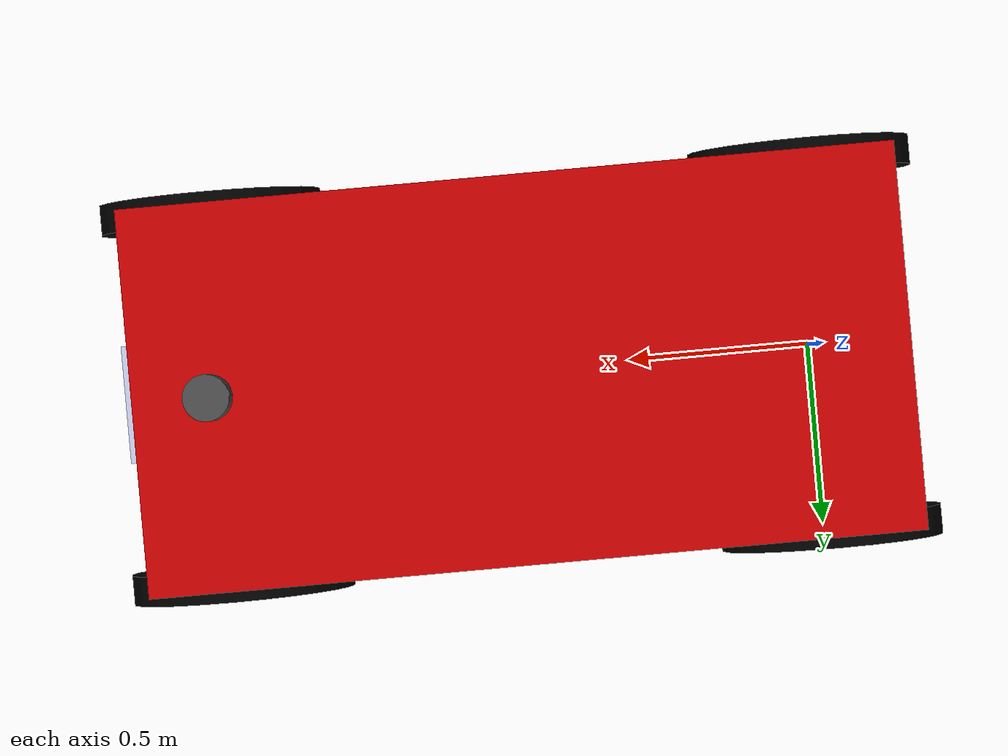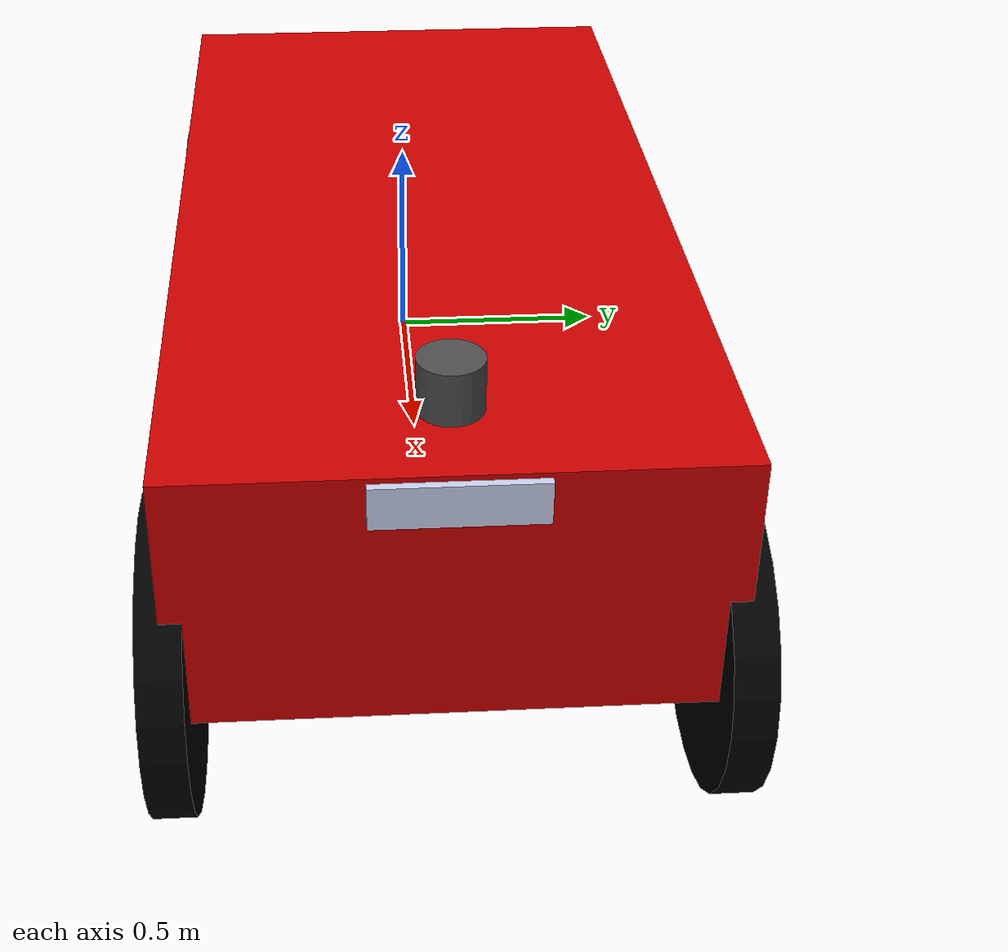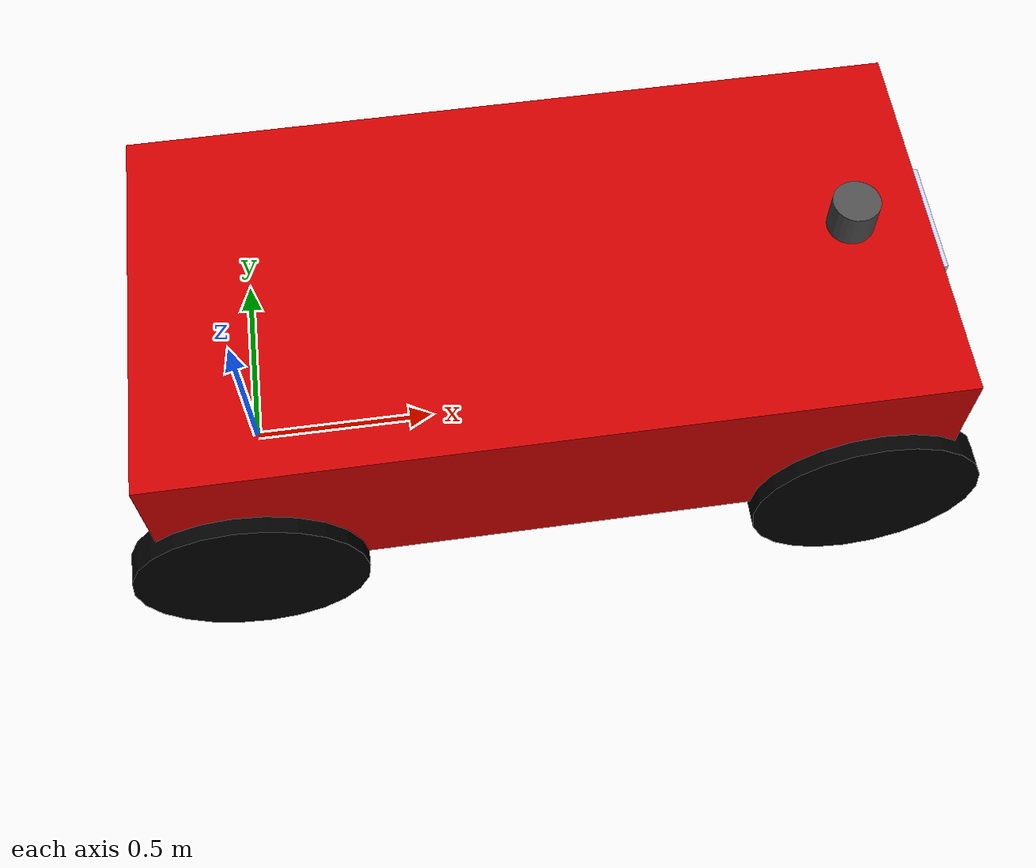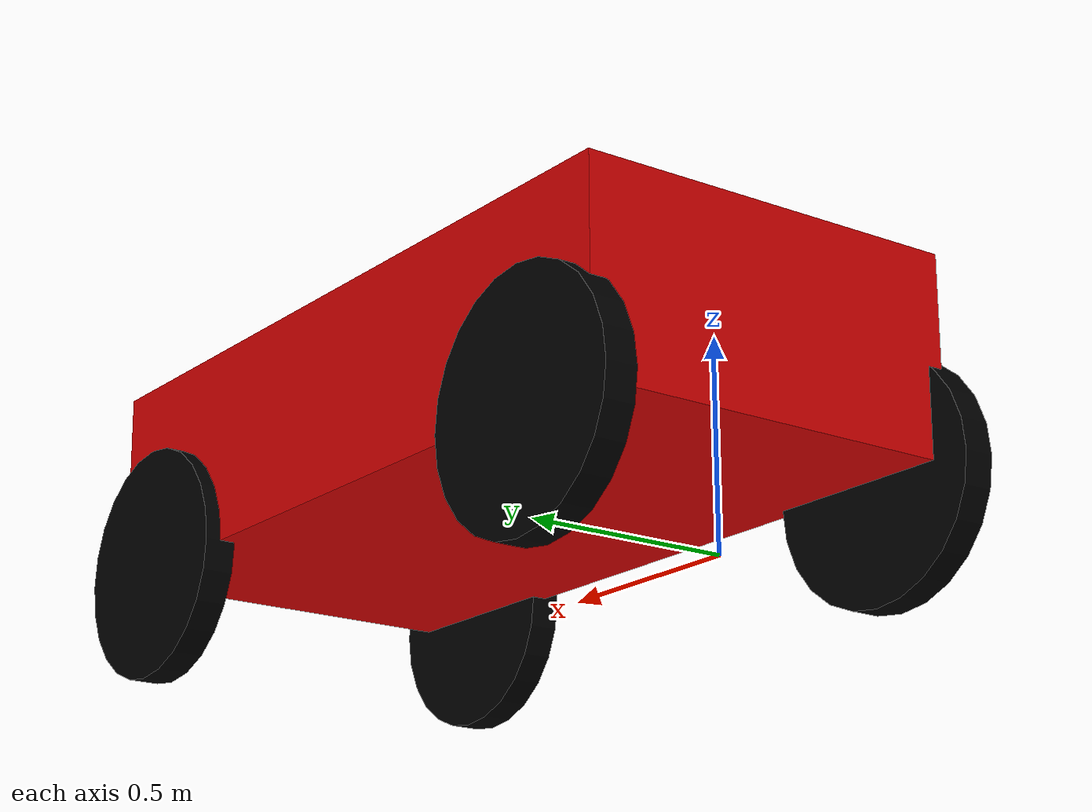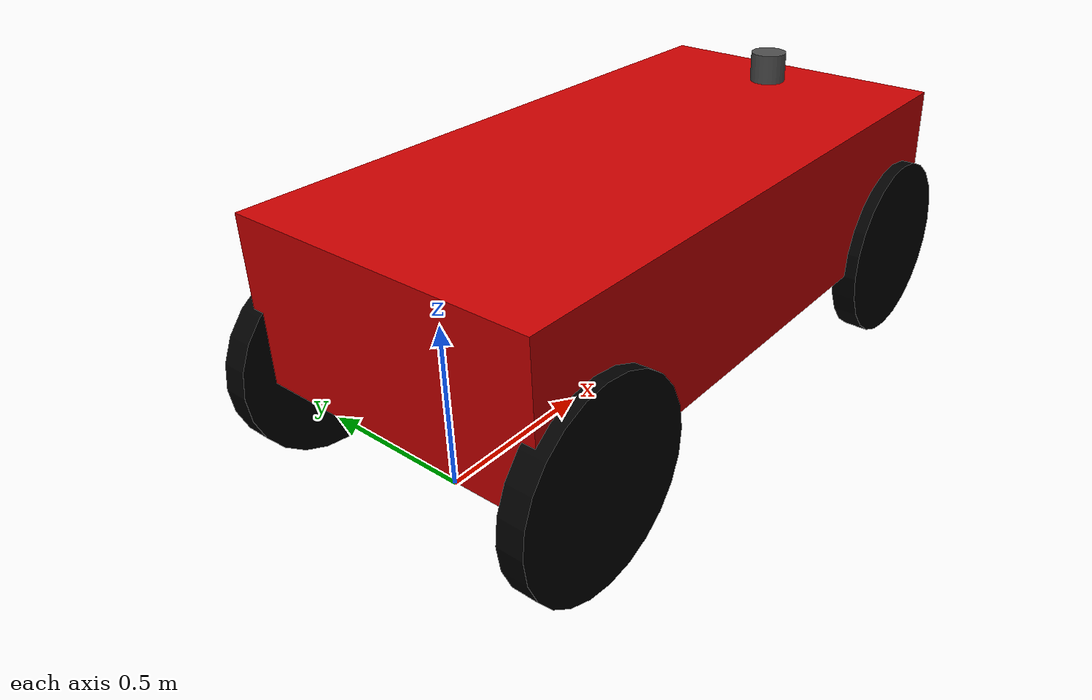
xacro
<?xml version="1.0"?>
<!-- 4 Wheel Robot with front steering and rear drive -->
<robot xmlns:xacro="http://www.ros.org/wiki/xacro" name="delicar_robot">

  <xacro:arg name="prefix" default="" />

  <xacro:arg name="use_sim" default="true"/>

  <!-- Import colors -->
  <xacro:include filename="$(find delicar_bringup)/urdf/color.materials.xacro" />

  <!-- Import delicar description -->
  <xacro:include filename="$(find delicar_bringup)/urdf/delicar_description.urdf.xacro" />
  <xacro:delicar prefix="" />

  <!-- Import camera -->
  <xacro:include filename="$(find delicar_bringup)/urdf/camera.urdf.xacro" />
  <xacro:camera prefix="$(arg prefix)" />

  <!-- Import imu -->
  <xacro:include filename="$(find delicar_bringup)/urdf/imu.urdf.xacro" />
  <xacro:imu prefix="$(arg prefix)" />

  <!-- Import velodyne lidar -->
  <xacro:include filename="$(find delicar_bringup)/urdf/velodyne_lidar.urdf.xacro" />
  <xacro:lidar prefix="$(arg prefix)" />

  <!-- Import delicar ros2_control -->
  <xacro:unless value="$(arg use_sim)">

    <xacro:include filename="$(find delicar_bringup)/ros2_control/delicar_controllers.xacro" />

    <xacro:delicar_ros2_control name="DeliCar" prefix="$(arg prefix)" />
  </xacro:unless>

  <xacro:if value="$(arg use_sim)">

    <xacro:include filename="$(find delicar_bringup)/ros2_control/gazebo_controllers.xacro" />

    <xacro:gazebo_ros2_control name="GazeboSystem" prefix="$(arg prefix)" />
  </xacro:if>

</robot>

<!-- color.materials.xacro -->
<robot name="xacro_properties"
  xmlns:xacro="http://ros.org/wiki/xacro">

  <!-- Init colour -->
  <material name="black">
    <color rgba="0.0 0.0 0.0 1.0" />
  </material>

  <material name="dark">
    <color rgba="0.3 0.3 0.3 1.0" />
  </material>
  <material name="light_black">
    <color rgba="0.4 0.4 0.4 1.0" />
  </material>

  <material name="blue">
    <color rgba="0.0 0.0 0.8 1.0" />
  </material>

  <material name="green">
    <color rgba="0.0 0.8 0.0 1.0" />
  </material>

  <material name="grey">
    <color rgba="0.5 0.5 0.5 1.0" />
  </material>

  <material name="orange">
    <color rgba="${255/255} ${108/255} ${10/255} 1.0" />
  </material>

  <material name="brown">
    <color rgba="${222/255} ${207/255} ${195/255} 1.0" />
  </material>

  <material name="red">
    <color rgba="0.8 0.0 0.0 1.0" />
  </material>

  <material name="white">
    <color rgba="1.0 1.0 1.0 1.0" />
  </material>

</robot>

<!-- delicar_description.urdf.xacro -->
<robot xmlns:xacro="http://www.ros.org/wiki/xacro">

  <xacro:macro name="delicar" params="prefix">

    <!-- Constants for robot dimensions -->
    <xacro:property name="PI" value="3.1415926535897931"/>
    <xacro:property name="base_mass" value="100.0" />
    <xacro:property name="base_width" value="1" />
    <xacro:property name="base_length" value="2" />
    <xacro:property name="base_height" value="0.5" />
    <xacro:property name="wheelbase" value="1.6" />
    <xacro:property name="wheeltrack" value="1.0" />
    <xacro:property name="wheel_mass" value="11.3" />
    <xacro:property name="wheel_len" value="0.08" />
    <xacro:property name="wheel_radius" value="0.3" />

    <!-- Base Link -->
    <link name="${prefix}base_link" />

    <!-- Chassis -->

    <link name="${prefix}chassis_link">

      <visual>
        <origin xyz="0 0 0" rpy="0 0 0"/>
        <geometry>
          <box size="${base_length} ${base_width} ${base_height}"/>
        </geometry>
        <material name="red"/>
      </visual>

      <inertial>
        <origin xyz="0 0 0" rpy="0 0 0"/>
        <mass value="${base_mass}"/>
        <inertia
          ixx="${base_mass / 12.0 * (base_width*base_width + base_height*base_height)}"
          ixy="0.0"
          ixz="0.0"
          iyy="${base_mass / 12.0 * (base_width*base_width + base_height*base_height)}"
          iyz="0.0"
          izz="${base_mass / 12.0 * (base_width*base_width + base_height*base_height)}"/>
      </inertial>

    </link>

    <joint name="${prefix}chassis_joint" type="fixed">
      <parent link="${prefix}base_link"/>
      <child link="${prefix}chassis_link"/>
      <origin xyz="0.8 0 0.5" rpy="0 0 0"/>
      <axis xyz="0 0 1"/>
      <dynamics damping="0.2"/>
    </joint>

    <!-- rear wheels -->

    <!-- rear left wheel -->
    <link name="${prefix}rear_left_wheel">
        <collision>
          <origin xyz="0 0 0" rpy="0 0 0"/>
          <geometry>
            <cylinder length="${wheel_len}" radius="${wheel_radius}"/>
          </geometry>
        </collision>

        <visual>
          <origin xyz="0 0 0" rpy="0 0 0"/>
          <geometry>
            <cylinder length="${wheel_len}" radius="${wheel_radius}"/>
          </geometry>
          <material name="black"/>
        </visual>

        <inertial>
          <origin xyz="0 0 0" rpy="0 0 0"/>
          <mass value="${wheel_mass}"/>
          <inertia
            ixx="${wheel_mass / 12.0 * (3 * wheel_radius*wheel_radius + wheel_len*wheel_len)}"
            ixy="0.0"
            ixz="0.0"
            iyy="${wheel_mass / 12.0 * (3 * wheel_radius*wheel_radius + wheel_len*wheel_len)}"
            iyz="0.0"
            izz="${wheel_mass / 2.0 * wheel_radius*wheel_radius}"/>
        </inertial>
    </link>

    <joint name="${prefix}rear_left_wheel_joint" type="continuous">
      <parent link="${prefix}chassis_link" />
      <child link="${prefix}rear_left_wheel" />
      <origin xyz="-${wheelbase/2} ${wheeltrack/2} -${base_height/2}" rpy="-1.57 0 0"/>
      <axis xyz="0 0 1"/>
      <dynamics damping="0.2"/>
    </joint>

    <!-- rear right wheel -->

    <link name="${prefix}rear_right_wheel">

      <collision>
        <origin xyz="0 0 0" rpy="0 0 0"/>
        <geometry>
          <cylinder length="${wheel_len}" radius="${wheel_radius}"/>
        </geometry>
      </collision>

      <visual>
        <origin xyz="0 0 0" rpy="0 0 0"/>
        <geometry>
          <cylinder length="${wheel_len}" radius="${wheel_radius}"/>
        </geometry>
        <material name="black"/>
      </visual>

      <inertial>
        <origin xyz="0 0 0" rpy="0 0 0"/>
        <mass value="${wheel_mass}"/>
        <inertia
          ixx="${wheel_mass / 12.0 * (3 * wheel_radius*wheel_radius + wheel_len*wheel_len)}"
          ixy="0.0"
          ixz="0.0"
          iyy="${wheel_mass / 12.0 * (3 * wheel_radius*wheel_radius + wheel_len*wheel_len)}"
          iyz="0.0"
          izz="${wheel_mass / 2.0 * wheel_radius*wheel_radius}"/>
      </inertial>

    </link>

    <joint name="${prefix}rear_right_wheel_joint" type="continuous">
      <parent link="${prefix}chassis_link"/>
      <child link="${prefix}rear_right_wheel"/>
      <origin xyz="-${wheelbase/2} -${wheeltrack/2} -${base_height/2}" rpy="-1.57 0 0"/>
      <axis xyz="0 0 1"/>
      <dynamics damping="0.2"/>
    </joint>

    <!-- steering links-->

    <!-- left sterring link-->

    <link name="${prefix}left_wheel_steering">
      <inertial>
      <mass value="0.1"/>
      <inertia ixx="0.0" ixy="0.0" ixz="0.0" iyy="0.0" iyz="0.0" izz="0.0" />
      </inertial>
    </link>

    <!-- left sterring joint-->

    <joint name="${prefix}left_wheel_steering_joint" type="revolute">
      <parent link="${prefix}chassis_link"/>
      <child link="${prefix}left_wheel_steering"/>
      <origin xyz="${wheelbase/2} -${wheeltrack/2} -${base_height/2}" rpy="${PI/2} 0 0"/>
      <axis xyz="0 1 0"/>
      <dynamics damping="0.2"/>
      <limit effort="1000.0" lower="-1.0471975512" upper="1.0471975512" velocity="30"/>
    </joint>

    <!-- right sterring link-->

    <link name="${prefix}right_wheel_steering">
      <inertial>
      <mass value="0.1"/>
      <inertia ixx="0.0" ixy="0.0" ixz="0.0" iyy="0.0" iyz="0.0" izz="0.0" />
      </inertial>
    </link>

    <!-- right sterring joint-->

    <joint name="${prefix}right_wheel_steering_joint" type="revolute">
      <parent link="${prefix}chassis_link"/>
      <child link="${prefix}right_wheel_steering"/>
      <origin xyz="${wheelbase/2} ${wheeltrack/2} -${base_height/2}" rpy="${PI/2} 0 0"/>
      <axis xyz="0 1 0"/>
      <dynamics damping="0.2"/>
      <limit effort="1000.0" lower="-1.0471975512" upper="1.0471975512" velocity="30"/>
    </joint>

    <!-- front wheels -->

    <!-- front left steering -->

    <link name="${prefix}front_left_wheel">
      <collision>
        <origin xyz="0 0 0" rpy="0 0 0"/>
        <geometry>
          <cylinder length="${wheel_len}" radius="${wheel_radius}"/>
        </geometry>
      </collision>

      <visual>
        <origin xyz="0 0 0" rpy="0 0 0"/>
        <geometry>
          <cylinder length="${wheel_len}" radius="${wheel_radius}"/>
        </geometry>
        <material name="black"/>
      </visual>

      <inertial>
        <origin xyz="0 0 0" rpy="0 0 0"/>
        <mass value="${wheel_mass}"/>
        <inertia
          ixx="${wheel_mass / 12.0 * (3 * wheel_radius*wheel_radius + wheel_len*wheel_len)}"
          ixy="0.0"
          ixz="0.0"
          iyy="${wheel_mass / 12.0 * (3 * wheel_radius*wheel_radius + wheel_len*wheel_len)}"
          iyz="0.0"
          izz="${wheel_mass / 2.0 * wheel_radius*wheel_radius}"/>
      </inertial>

    </link>

    <joint name="${prefix}front_left_wheel_joint" type="continuous">
      <parent link="${prefix}left_wheel_steering" />
      <child link="${prefix}front_left_wheel" />
      <origin xyz="0 0 0" rpy="0 0 0"/>
      <axis xyz="0 0 1"/>
      <dynamics damping="0.2"/>
    </joint>

    <!-- front right wheel -->

    <link name="${prefix}front_right_wheel">

      <collision>
        <origin xyz="0 0 0" rpy="0 0 0"/>
        <geometry>
          <cylinder length="${wheel_len}" radius="${wheel_radius}"/>
        </geometry>
      </collision>

      <visual>
        <origin xyz="0 0 0" rpy="0 0 0"/>
        <geometry>
          <cylinder length="${wheel_len}" radius="${wheel_radius}"/>
        </geometry>
        <material name="black"/>
      </visual>

      <inertial>
        <origin xyz="0 0 0" rpy="0 0 0"/>
        <mass value="${wheel_mass}"/>
        <inertia
          ixx="${wheel_mass / 12.0 * (3 * wheel_radius*wheel_radius + wheel_len*wheel_len)}"
          ixy="0.0"
          ixz="0.0"
          iyy="${wheel_mass / 12.0 * (3 * wheel_radius*wheel_radius + wheel_len*wheel_len)}"
          iyz="0.0"
          izz="${wheel_mass / 2.0 * wheel_radius*wheel_radius}"/>
      </inertial>
    </link>

    <joint name="${prefix}front_right_wheel_joint" type="continuous">
      <parent link="${prefix}right_wheel_steering" />
      <child link="${prefix}front_right_wheel" />
      <origin xyz="0 0 0" rpy="0 0 0"/>
      <axis xyz="0 0 1"/>
      <dynamics damping="0.2"/>
    </joint>

  </xacro:macro>

</robot>

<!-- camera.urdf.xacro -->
<robot xmlns:xacro="http://www.ros.org/wiki/xacro">

  <xacro:macro name="camera" params="prefix">

    <joint name="${prefix}camera_joint" type="fixed">
        <origin
        xyz="1.8 0 0.7"
        rpy="0 0 0" />
        <parent link="${prefix}base_link" />
        <child link="${prefix}camera_link" />
        <axis xyz="0 0 0" />
    </joint>

    <link name="${prefix}camera_link">
        <visual>
            <origin
                xyz="0 0 0"
                rpy="0 0 0" />
            <geometry>
                <box size="0.03 0.3 0.08"/>
            </geometry>
            <material name="">
                <color rgba="0.792156862745098 0.819607843137255 0.933333333333333 1" />
            </material>
        </visual>
    </link>

    <joint name="${prefix}camera_optical_joint" type="fixed">
        <parent link="${prefix}camera_link"/>
        <child link="${prefix}camera_link_optical"/>
        <origin xyz="0 0 0" rpy="${-pi/2} 0 ${-pi/2}"/>
    </joint>

    <link name="${prefix}camera_link_optical"></link>

    <gazebo reference="${prefix}camera_link">

        <material>Gazebo/Gray</material>

        <sensor name="camera" type="depth">

            <pose> 0 0 0 0 0 0 </pose>
            <visualize>true</visualize>
            <update_rate>90</update_rate>

            <camera>
                <horizontal_fov>1.507</horizontal_fov>
                <image>
                    <format>R8G8B8</format>
                    <width>1280</width>
                    <height>720</height>
                </image>
                <clip>
                    <near>0.05</near>
                    <far>100.0</far>
                </clip>
                <noise>
                    <type>gaussian</type>
                    <mean>0.0</mean>
                    <stddev>0.005</stddev>
                </noise>
            </camera>

            <plugin name="camera_controller" filename="libgazebo_ros_camera.so">
                <frame_name>${prefix}camera_link_optical</frame_name>
                <min_depth>0.1</min_depth>
                <max_depth>100.0</max_depth>
            </plugin>

            <plugin name="pointcloud_controller" filename="libgazebo_ros_pointcloud.so">
                <topic_name>/camera/depth/points_out</topic_name>
                <frame_name>${prefix}camera_link_optical</frame_name>
            </plugin>

        </sensor>
    </gazebo>

  </xacro:macro>

</robot>

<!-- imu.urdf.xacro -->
<robot xmlns:xacro="http://www.ros.org/wiki/xacro">

    <xacro:macro name="imu" params="prefix">

        <xacro:macro name="box_inertia" params="m w h d">
            <inertial>
                <origin xyz="0 0 0" rpy="${pi/2} 0 ${pi/2}" />
                <mass value="${m}" />
                <inertia ixx="${(m/12) * (h*h + d*d)}" ixy="0.0" ixz="0.0"
                    iyy="${(m/12) * (w*w + d*d)}" iyz="0.0" izz="${(m/12) * (w*w + h*h)}" />
            </inertial>
        </xacro:macro>

        <xacro:macro name="cylinder_inertia" params="m r h">
            <inertial>
                <origin xyz="0 0 0" rpy="${pi/2} 0 0" />
                <mass value="${m}" />
                <inertia ixx="${(m/12) * (3*r*r + h*h)}" ixy="0" ixz="0"
                    iyy="${(m/12) * (3*r*r + h*h)}" iyz="0" izz="${(m/2) * (r*r)}" />
            </inertial>
        </xacro:macro>

        <xacro:macro name="sphere_inertia" params="m r">
            <inertial>
                <mass value="${m}" />
                <inertia ixx="${(2/5) * m * (r*r)}" ixy="0.0" ixz="0.0" iyy="${(2/5) * m * (r*r)}"
                    iyz="0.0" izz="${(2/5) * m * (r*r)}" />
            </inertial>
        </xacro:macro>

        <link name="imu_link">
            <xacro:box_inertia m="0.01" w="0.01" d="0.01" h="0.01" />
        </link>

        <joint name="${prefix}imu_joint" type="fixed">
            <parent link="${prefix}base_link" />
            <child link="${prefix}imu_link" />
            <origin xyz="0 0 0.01" />
        </joint>

        <gazebo reference="${prefix}imu_link">
            <sensor name="imu_sensor" type="imu">
                <plugin filename="libgazebo_ros_imu_sensor.so" name="imu_plugin">
                    <ros>
                        <remapping>~/out:=imu_raw</remapping>
                    </ros>
                    <initial_orientation_as_reference>false</initial_orientation_as_reference>
                </plugin>
                <always_on>true</always_on>
                <update_rate>100</update_rate>
                <visualize>true</visualize>
                <imu>
                    <angular_velocity>
                        <x>
                            <noise type="gaussian">
                                <mean>0.0</mean>
                                <stddev>2e-4</stddev>
                                <bias_mean>0.0000075</bias_mean>
                                <bias_stddev>0.0000008</bias_stddev>
                            </noise>
                        </x>
                        <y>
                            <noise type="gaussian">
                                <mean>0.0</mean>
                                <stddev>2e-4</stddev>
                                <bias_mean>0.0000075</bias_mean>
                                <bias_stddev>0.0000008</bias_stddev>
                            </noise>
                        </y>
                        <z>
                            <noise type="gaussian">
                                <mean>0.0</mean>
                                <stddev>2e-4</stddev>
                                <bias_mean>0.0000075</bias_mean>
                                <bias_stddev>0.0000008</bias_stddev>
                            </noise>
                        </z>
                    </angular_velocity>
                    <linear_acceleration>
                        <x>
                            <noise type="gaussian">
                                <mean>0.0</mean>
                                <stddev>1.7e-2</stddev>
                                <bias_mean>0.1</bias_mean>
                                <bias_stddev>0.001</bias_stddev>
                            </noise>
                        </x>
                        <y>
                            <noise type="gaussian">
                                <mean>0.0</mean>
                                <stddev>1.7e-2</stddev>
                                <bias_mean>0.1</bias_mean>
                                <bias_stddev>0.001</bias_stddev>
                            </noise>
                        </y>
                        <z>
                            <noise type="gaussian">
                                <mean>0.0</mean>
                                <stddev>1.7e-2</stddev>
                                <bias_mean>0.1</bias_mean>
                                <bias_stddev>0.001</bias_stddev>
                            </noise>
                        </z>
                    </linear_acceleration>
                </imu>
            </sensor>
        </gazebo>

    </xacro:macro>

</robot>

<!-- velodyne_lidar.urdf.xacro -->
<robot xmlns:xacro="http://www.ros.org/wiki/xacro">

  <xacro:macro name="lidar" params="prefix">

    <joint name="scan_joint" type="fixed">
      <parent link="base_link" />
      <child link="velodyne" />
      <origin xyz="1.6 0 0.8" rpy="0 3.141592653589793 0" />
    </joint>

    <link name="velodyne">
      <visual>
        <origin xyz="0 0 0" rpy="0 0 0" />
        <geometry>
          <cylinder length="0.1" radius="0.06"/>
        </geometry>
        <material name="dark" />
      </visual>

      <inertial>
        <mass value="0.114" />
        <origin xyz="0 0 0" />
        <inertia ixx="0.001" ixy="0.0" ixz="0.0"
          iyy="0.001" iyz="0.0"
          izz="0.001" />
      </inertial>
    </link>

    <gazebo reference="velodyne">
      <sensor name="velodyne-VLP16" type="ray">
        <visualize>false</visualize>
        <update_rate>10</update_rate>
        <ray>
          <scan>
            <horizontal>
              <samples>440</samples>
              <resolution>1</resolution>
              <min_angle>-3.141592653589793</min_angle>
              <max_angle>3.141592653589793</max_angle>
            </horizontal>
            <vertical>
              <samples>16</samples>
              <resolution>1</resolution>
              <min_angle>-0.2617993877991494</min_angle>
              <max_angle>0.2617993877991494</max_angle>
            </vertical>
          </scan>
          <range>
            <min>0.3</min>
            <max>131.0</max>
            <resolution>0.001</resolution>
          </range>
        </ray>
        <plugin name="gazebo_ros_laser_controller" filename="libgazebo_ros_velodyne_laser.so">
          <topicName>/points_raw</topicName>
          <frameName>velodyne</frameName>
          <min_range>0.9</min_range>
          <max_range>130.0</max_range>
          <gaussianNoise>0.008</gaussianNoise>
          <updateRate>10</updateRate>
          <organize_cloud>false</organize_cloud>
          <min_intensity>0.0</min_intensity>
        </plugin>
      </sensor>
    </gazebo>

  </xacro:macro>

</robot>
